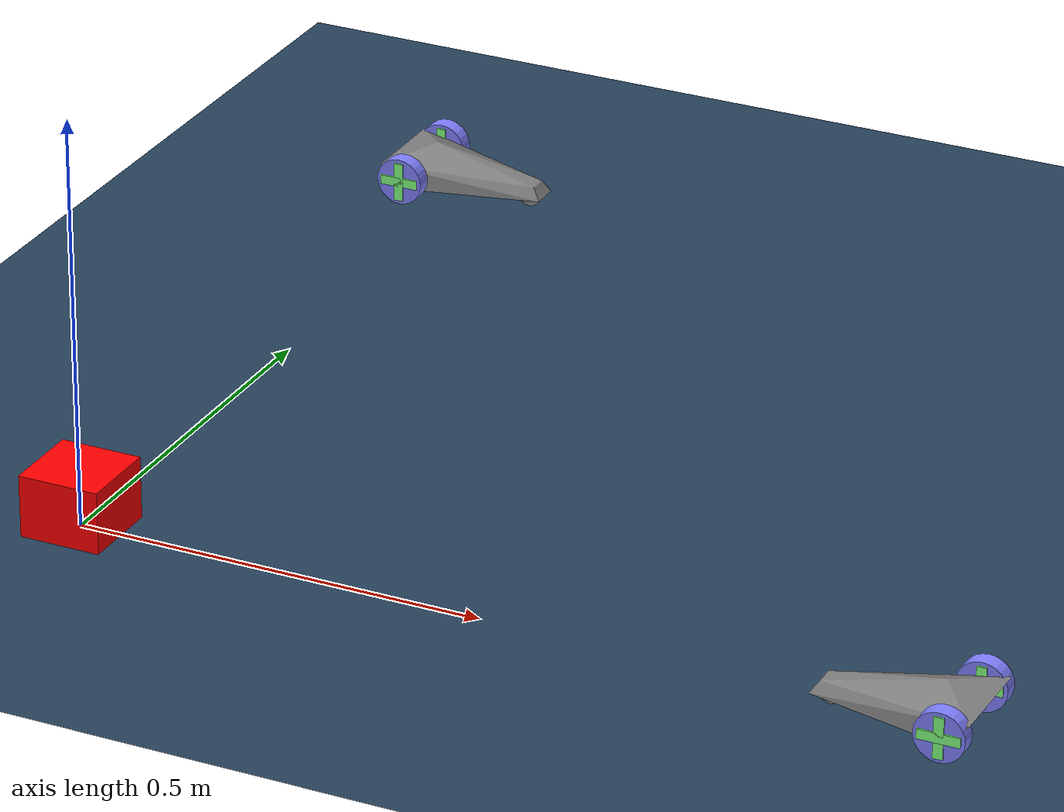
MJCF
<mujoco>
  <compiler autolimits="true"/>

  <asset>
    <texture name="grid" type="2d" builtin="checker" width="512" height="512" rgb1=".1 .2 .3" rgb2=".2 .3 .4"/>
    <material name="grid" texture="grid" texrepeat="1 1" texuniform="true" reflectance=".2"/>
    <mesh name="chasis" scale=".01 .006 .0015" vertex=" 9   2   0
              -10  10  10
               9  -2   0
               10  3  -10
               10 -3  -10
              -8   10 -10
              -10 -10  10
              -8  -10 -10
              -5   0   20"/>
  </asset>

  <default>
    <joint damping=".03" actuatorfrcrange="-0.5 0.5"/>
    <default class="wheel">
      <geom type="cylinder" size=".03 .01" rgba=".5 .5 1 1"/>
    </default>
    <default class="decor">
      <site type="box" rgba=".5 1 .5 1"/>
    </default>
  </default>

  <worldbody>
    <light pos="1 0 3" dir="0 0 -1"/>
    <light pos="-1 0 3" dir="0 0 -1"/>
    <light pos="0 1 3" dir="0 0 -1"/>
    <light pos="0 -1 3" dir="0 0 -1"/>

    <geom type="plane" size="3 3 .01" material="grid"/>
    <body name="target-box" pos="0 0 .025">
      <inertial pos="0 0 0" mass="0.1" diaginertia="1 1 1"/>
      <geom type="box" size=".05 .05 .05" rgba="1 0 0 1"/>
      <joint name="target" type="free"/>
    </body>
    <body name="car 1" pos="0 1 .03">
      <freejoint/>
      <light name="top light 1" pos="0 0 2" mode="trackcom" diffuse=".4 .4 .4"/>
      <geom name="chasis 1" type="mesh" mesh="chasis"/>
      <geom name="front wheel 1" pos=".08 0 -.015" type="sphere" size=".015" condim="1" priority="1"/>
      <light name="front light 1" pos=".1 0 .02" dir="2 0 -1" diffuse="1 1 1"/>
      <body name="left wheel 1" pos="-.07 .06 0" zaxis="0 1 0">
        <joint name="left 1"/>
        <geom class="wheel"/>
        <site class="decor" size=".006 .025 .012"/>
        <site class="decor" size=".025 .006 .012"/>
      </body>
      <body name="right wheel 1" pos="-.07 -.06 0" zaxis="0 1 0">
        <joint name="right 1"/>
        <geom class="wheel"/>
        <site class="decor" size=".006 .025 .012"/>
        <site class="decor" size=".025 .006 .012"/>
      </body>
      <camera name="camera1" pos="-0.1 0 0.05" fovy="90" euler="180 -80 90"/>
    </body>
    <body name="car 2" pos="1 0 .03" euler="0 0 180">
      <freejoint/>
      <light name="top light 2" pos="0 0 2" mode="trackcom" diffuse=".4 .4 .4"/>
      <geom name="chasis 2" type="mesh" mesh="chasis"/>
      <geom name="front wheel 2" pos=".08 0 -.015" type="sphere" size=".015" condim="1" priority="1"/>
      <light name="front light 2" pos=".1 0 .02" dir="2 0 -1" diffuse="1 1 1"/>
      <body name="left wheel 2" pos="-.07 .06 0" zaxis="0 1 0">
        <joint name="left 2"/>
        <geom class="wheel"/>
        <site class="decor" size=".006 .025 .012"/>
        <site class="decor" size=".025 .006 .012"/>
      </body>
      <body name="right wheel 2" pos="-.07 -.06 0" zaxis="0 1 0">
        <joint name="right 2"/>
        <geom class="wheel"/>
        <site class="decor" size=".006 .025 .012"/>
        <site class="decor" size=".025 .006 .012"/>
      </body>
    </body>

  </worldbody>

  <tendon>
    <fixed name="forward 1">
      <joint joint="left 1" coef=".5"/>
      <joint joint="right 1" coef=".5"/>
    </fixed>
    <fixed name="turn 1">
      <joint joint="left 1" coef="-.5"/>
      <joint joint="right 1" coef=".5"/>
    </fixed>

    <fixed name="forward 2">
      <joint joint="left 2" coef=".5"/>
      <joint joint="right 2" coef=".5"/>
    </fixed>
    <fixed name="turn 2">
      <joint joint="left 2" coef="-.5"/>
      <joint joint="right 2" coef=".5"/>
    </fixed>
  </tendon>

  <actuator>
    <motor name="forward 1" tendon="forward 1" ctrlrange="-1 1"/>
    <motor name="turn 1" tendon="turn 1" ctrlrange="-1 1"/>

    <motor name="forward 2" tendon="forward 2" ctrlrange="-1 1"/>
    <motor name="turn 2" tendon="turn 2" ctrlrange="-1 1"/>
  </actuator>

  <sensor>
    <jointactuatorfrc name="right 1" joint="right 1"/>
    <jointactuatorfrc name="left 1" joint="left 1"/>

    <jointactuatorfrc name="right 2" joint="right 2"/>
    <jointactuatorfrc name="left 2" joint="left 2"/>
  </sensor>
</mujoco>
